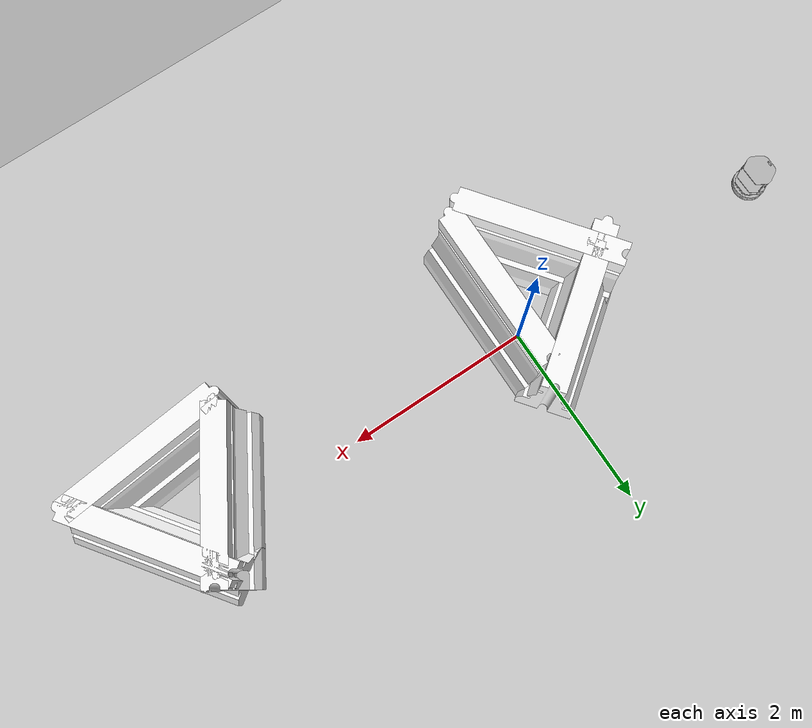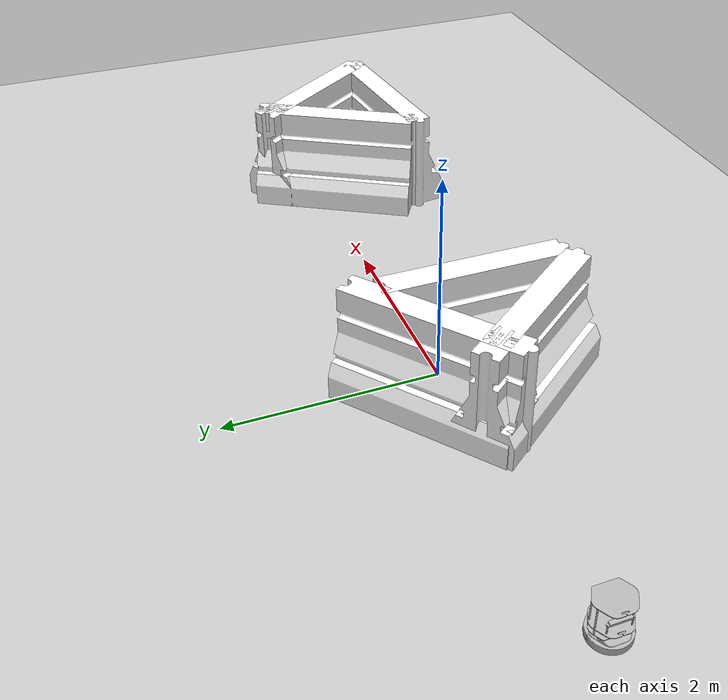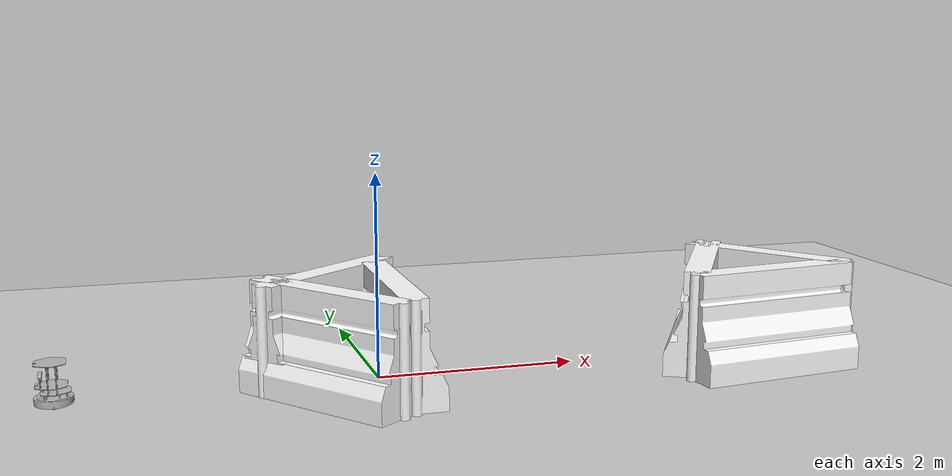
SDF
<sdf version="1.4">
 <world name="default">
  <light name="sun" type="directional">
   <cast_shadows>0</cast_shadows>
   <pose>0 0 10 0 -0 0</pose>
   <diffuse>0.8 0.8 0.8 1</diffuse>
   <specular>0.2 0.2 0.2 1</specular>
   <attenuation>
    <range>1000</range>
    <constant>0.9</constant>
    <linear>0.01</linear>
    <quadratic>0.001</quadratic>
   </attenuation>
   <direction>-0.5 0.1 -0.9</direction>
  </light>
  <model name="ground_plane">
   <static>1</static>
   <link name="link">
    <collision name="collision">
     <geometry><plane><normal>0 0 1</normal><size>100 100</size></plane></geometry>
     <surface><friction><ode><mu>100</mu><mu2>50</mu2></ode></friction></surface>
    </collision>
    <visual name="visual">
     <cast_shadows>0</cast_shadows>
     <geometry><plane><normal>0 0 1</normal><size>100 100</size></plane></geometry>
     <material>
      <script><uri>file://media/materials/scripts/gazebo.material</uri><name>Gazebo/Grey</name></script>
     </material>
    </visual>
    <velocity_decay><linear>0</linear><angular>0</angular></velocity_decay>
   </link>
  </model>
  <physics type="ode">
   <max_step_size>0.001</max_step_size>
   <real_time_factor>1</real_time_factor>
   <real_time_update_rate>1000</real_time_update_rate>
   <gravity>0 0 -9.8</gravity>
  </physics>
  <scene><ambient>0.4 0.4 0.4 1</ambient><background>0.7 0.7 0.7 1</background><shadows>0</shadows></scene>
  <spherical_coordinates>
   <surface_model>EARTH_WGS84</surface_model>
   <latitude_deg>0</latitude_deg>
   <longitude_deg>0</longitude_deg>
   <elevation>0</elevation>
   <heading_deg>0</heading_deg>
  </spherical_coordinates>
  <model name="mobile_base">
   <link name="base_footprint">
    <inertial>
     <pose>-0.00263512 -4.10874e-05 0.129243 0 -0 0</pose>
     <mass>4.6973</mass>
     <inertia>
      <ixx>0.1365</ixx>
      <ixy>-2.51802e-05</ixy>
      <ixz>0.0108194</ixz>
      <iyy>0.132157</iyy>
      <iyz>4.89572e-05</iyz>
      <izz>0.0741648</izz>
     </inertia>
    </inertial>
    <collision name="base_footprint_collision_base_link">
     <pose>0 0 0.06969 0 -0 0</pose>
     <geometry><cylinder><length>0.10938</length><radius>0.178</radius></cylinder></geometry>
     <surface><friction><ode><mu>0.3</mu><mu2>0.3</mu2></ode></friction></surface>
    </collision>
    <collision name="base_footprint_collision_camera_link">
     <pose>-0.087 -0.0015 0.2972 0 -0 0</pose>
     <geometry><box><size>0.073 0.276 0.072</size></box></geometry>
    </collision>
    <collision name="base_footprint_collision_caster_back_link">
     <pose>-0.135 0 0.0192 -1.5708 0 0</pose>
     <geometry><cylinder><length>0.0176</length><radius>0.017</radius></cylinder></geometry>
     <surface>
      <contact><ode><kp>1e+06</kp><kd>100</kd><max_vel>1</max_vel><min_depth>0.001</min_depth></ode></contact>
      <friction><ode><mu>0</mu><mu2>0</mu2></ode></friction>
     </surface>
    </collision>
    <collision name="base_footprint_collision_caster_front_link">
     <pose>0.115 0 0.0172 -1.5708 0 0</pose>
     <geometry><cylinder><length>0.0176</length><radius>0.017</radius></cylinder></geometry>
     <surface>
      <contact><ode><kp>1e+06</kp><kd>100</kd><max_vel>1</max_vel><min_depth>0.001</min_depth></ode></contact>
      <friction><ode><mu>0</mu><mu2>0</mu2></ode></friction>
     </surface>
    </collision>
    <collision name="base_footprint_collision_mount_asus_xtion_pro_link">
     <pose>-0.1024 0 0.2822 0 -0 0</pose>
     <geometry><box><size>0.033 0.276 0.012</size></box></geometry>
    </collision>
    <collision name="base_footprint_collision_plate_bottom_link">
     <pose>0 0 0.1408 0 -0 0</pose>
     <geometry><cylinder><length>0.006</length><radius>0.17</radius></cylinder></geometry>
    </collision>
    <collision name="base_footprint_collision_plate_middle_link">
     <pose>0 0 0.1976 0 -0 0</pose>
     <geometry><cylinder><length>0.006</length><radius>0.17</radius></cylinder></geometry>
    </collision>
    <collision name="base_footprint_collision_plate_top_link">
     <pose>0 0 0.4068 0 -0 0</pose>
     <geometry><cylinder><length>0.006</length><radius>0.17</radius></cylinder></geometry>
    </collision>
    <collision name="base_footprint_collision_pole_bottom_0_link">
     <pose>0.12 0.082 0.113 0 -0 0</pose>
     <geometry><cylinder><length>0.0492</length><radius>0.006</radius></cylinder></geometry>
    </collision>
    <collision name="base_footprint_collision_pole_bottom_1_link">
     <pose>0.055 0.12 0.113 0 -0 0</pose>
     <geometry><cylinder><length>0.0492</length><radius>0.006</radius></cylinder></geometry>
    </collision>
    <collision name="base_footprint_collision_pole_bottom_2_link">
     <pose>-0.055 0.12 0.113 0 -0 0</pose>
     <geometry><cylinder><length>0.0492</length><radius>0.006</radius></cylinder></geometry>
    </collision>
    <collision name="base_footprint_collision_pole_bottom_3_link">
     <pose>0.12 -0.082 0.113 0 -0 0</pose>
     <geometry><cylinder><length>0.0492</length><radius>0.006</radius></cylinder></geometry>
    </collision>
    <collision name="base_footprint_collision_pole_bottom_4_link">
     <pose>0.055 -0.12 0.113 0 -0 0</pose>
     <geometry><cylinder><length>0.0492</length><radius>0.006</radius></cylinder></geometry>
    </collision>
    <collision name="base_footprint_collision_pole_bottom_5_link">
     <pose>-0.055 -0.12 0.113 0 -0 0</pose>
     <geometry><cylinder><length>0.0492</length><radius>0.006</radius></cylinder></geometry>
    </collision>
    <collision name="base_footprint_collision_pole_kinect_0_link">
     <pose>-0.1024 0.098 0.2474 0 -0 0</pose>
     <geometry><cylinder><length>0.0936</length><radius>0.006</radius></cylinder></geometry>
    </collision>
    <collision name="base_footprint_collision_pole_kinect_1_link">
     <pose>-0.1024 -0.098 0.2474 0 -0 0</pose>
     <geometry><cylinder><length>0.0936</length><radius>0.006</radius></cylinder></geometry>
    </collision>
    <collision name="base_footprint_collision_pole_middle_0_link">
     <pose>0.0381 0.1505 0.1742 0 -0 0</pose>
     <geometry><cylinder><length>0.0608</length><radius>0.006</radius></cylinder></geometry>
    </collision>
    <collision name="base_footprint_collision_pole_middle_1_link">
     <pose>0.0381 -0.1505 0.1742 0 -0 0</pose>
     <geometry><cylinder><length>0.0608</length><radius>0.006</radius></cylinder></geometry>
    </collision>
    <collision name="base_footprint_collision_pole_middle_2_link">
     <pose>-0.0381 0.1505 0.1742 0 -0 0</pose>
     <geometry><cylinder><length>0.0608</length><radius>0.006</radius></cylinder></geometry>
    </collision>
    <collision name="base_footprint_collision_pole_middle_3_link">
     <pose>-0.0381 -0.1505 0.1742 0 -0 0</pose>
     <geometry><cylinder><length>0.0608</length><radius>0.006</radius></cylinder></geometry>
    </collision>
    <collision name="base_footprint_collision_pole_top_0_link">
     <pose>0.0381 0.1505 0.3022 0 -0 0</pose>
     <geometry><cylinder><length>0.2032</length><radius>0.006</radius></cylinder></geometry>
    </collision>
    <collision name="base_footprint_collision_pole_top_1_link">
     <pose>0.0381 -0.1505 0.3022 0 -0 0</pose>
     <geometry><cylinder><length>0.2032</length><radius>0.006</radius></cylinder></geometry>
    </collision>
    <collision name="base_footprint_collision_pole_top_2_link">
     <pose>-0.0381 0.1505 0.3022 0 -0 0</pose>
     <geometry><cylinder><length>0.2032</length><radius>0.006</radius></cylinder></geometry>
    </collision>
    <collision name="base_footprint_collision_pole_top_3_link">
     <pose>-0.0381 -0.1505 0.3022 0 -0 0</pose>
     <geometry><cylinder><length>0.2032</length><radius>0.006</radius></cylinder></geometry>
    </collision>
    <visual name="base_footprint_visual_base_link">
     <pose>0.001 0 0.06219 0 -0 0</pose>
     <geometry>
      <mesh><scale>1 1 1</scale><uri>/opt/ros/indigo/share/kobuki_description/meshes/main_body.dae</uri></mesh>
     </geometry>
    </visual>
    <visual name="base_footprint_visual_camera_link">
     <pose>-0.102 0.002 0.3012 0 -0 0</pose>
     <geometry>
      <mesh>
       <scale>1 1 1</scale>
       <uri>/opt/ros/indigo/share/turtlebot_description/meshes/sensors/xtion_pro_camera.dae</uri>
      </mesh>
     </geometry>
    </visual>
    <visual name="base_footprint_visual_mount_asus_xtion_pro_link">
     <pose>-0.1024 0 0.2822 -1.5708 0 0</pose>
     <geometry>
      <mesh>
       <scale>1 1 1</scale>
       <uri>/opt/ros/indigo/share/turtlebot_description/meshes/sensors/xtion_pro_stack.dae</uri>
      </mesh>
     </geometry>
    </visual>
    <visual name="base_footprint_visual_plate_bottom_link">
     <pose>0.02364 0 0.1408 0 -0 0</pose>
     <geometry>
      <mesh>
       <scale>1 1 1</scale>
       <uri>/opt/ros/indigo/share/turtlebot_description/meshes/stacks/hexagons/plate_bottom.dae</uri>
      </mesh>
     </geometry>
    </visual>
    <visual name="base_footprint_visual_plate_middle_link">
     <pose>-0.01364 0 0.1976 0 -0 0</pose>
     <geometry>
      <mesh>
       <scale>1 1 1</scale>
       <uri>/opt/ros/indigo/share/turtlebot_description/meshes/stacks/hexagons/plate_middle.dae</uri>
      </mesh>
     </geometry>
    </visual>
    <visual name="base_footprint_visual_plate_top_link">
     <pose>-0.01364 0 0.4068 0 -0 0</pose>
     <geometry>
      <mesh>
       <scale>1 1 1</scale>
       <uri>/opt/ros/indigo/share/turtlebot_description/meshes/stacks/hexagons/plate_top.dae</uri>
      </mesh>
     </geometry>
    </visual>
    <visual name="base_footprint_visual_pole_bottom_0_link">
     <pose>0.12 0.082 0.113 0 -0 0</pose>
     <geometry>
      <mesh>
       <scale>1 1 1</scale>
       <uri>/opt/ros/indigo/share/turtlebot_description/meshes/stacks/hexagons/pole_bottom.dae</uri>
      </mesh>
     </geometry>
    </visual>
    <visual name="base_footprint_visual_pole_bottom_1_link">
     <pose>0.055 0.12 0.113 0 -0 0</pose>
     <geometry>
      <mesh>
       <scale>1 1 1</scale>
       <uri>/opt/ros/indigo/share/turtlebot_description/meshes/stacks/hexagons/pole_bottom.dae</uri>
      </mesh>
     </geometry>
    </visual>
    <visual name="base_footprint_visual_pole_bottom_2_link">
     <pose>-0.055 0.12 0.113 0 -0 0</pose>
     <geometry>
      <mesh>
       <scale>1 1 1</scale>
       <uri>/opt/ros/indigo/share/turtlebot_description/meshes/stacks/hexagons/pole_bottom.dae</uri>
      </mesh>
     </geometry>
    </visual>
    <visual name="base_footprint_visual_pole_bottom_3_link">
     <pose>0.12 -0.082 0.113 0 -0 0</pose>
     <geometry>
      <mesh>
       <scale>1 1 1</scale>
       <uri>/opt/ros/indigo/share/turtlebot_description/meshes/stacks/hexagons/pole_bottom.dae</uri>
      </mesh>
     </geometry>
    </visual>
    <visual name="base_footprint_visual_pole_bottom_4_link">
     <pose>0.055 -0.12 0.113 0 -0 0</pose>
     <geometry>
      <mesh>
       <scale>1 1 1</scale>
       <uri>/opt/ros/indigo/share/turtlebot_description/meshes/stacks/hexagons/pole_bottom.dae</uri>
      </mesh>
     </geometry>
    </visual>
    <visual name="base_footprint_visual_pole_bottom_5_link">
     <pose>-0.055 -0.12 0.113 0 -0 0</pose>
     <geometry>
      <mesh>
       <scale>1 1 1</scale>
       <uri>/opt/ros/indigo/share/turtlebot_description/meshes/stacks/hexagons/pole_bottom.dae</uri>
      </mesh>
     </geometry>
    </visual>
    <visual name="base_footprint_visual_pole_kinect_0_link">
     <pose>-0.1024 0.098 0.2374 0 -0 0</pose>
     <geometry>
      <mesh>
       <scale>1 1 1</scale>
       <uri>/opt/ros/indigo/share/turtlebot_description/meshes/sensors/sensor_pole.dae</uri>
      </mesh>
     </geometry>
    </visual>
    <visual name="base_footprint_visual_pole_kinect_1_link">
     <pose>-0.1024 -0.098 0.2374 0 -0 0</pose>
     <geometry>
      <mesh>
       <scale>1 1 1</scale>
       <uri>/opt/ros/indigo/share/turtlebot_description/meshes/sensors/sensor_pole.dae</uri>
      </mesh>
     </geometry>
    </visual>
    <visual name="base_footprint_visual_pole_middle_0_link">
     <pose>0.0381 0.1505 0.1742 3.14159 -2.06823e-13 3.14159</pose>
     <geometry>
      <mesh>
       <scale>1 1 1</scale>
       <uri>/opt/ros/indigo/share/turtlebot_description/meshes/stacks/hexagons/pole_middle.dae</uri>
      </mesh>
     </geometry>
    </visual>
    <visual name="base_footprint_visual_pole_middle_1_link">
     <pose>0.0381 -0.1505 0.1742 3.14159 -2.06823e-13 3.14159</pose>
     <geometry>
      <mesh>
       <scale>1 1 1</scale>
       <uri>/opt/ros/indigo/share/turtlebot_description/meshes/stacks/hexagons/pole_middle.dae</uri>
      </mesh>
     </geometry>
    </visual>
    <visual name="base_footprint_visual_pole_middle_2_link">
     <pose>-0.0381 0.1505 0.1742 3.14159 -2.06823e-13 3.14159</pose>
     <geometry>
      <mesh>
       <scale>1 1 1</scale>
       <uri>/opt/ros/indigo/share/turtlebot_description/meshes/stacks/hexagons/pole_middle.dae</uri>
      </mesh>
     </geometry>
    </visual>
    <visual name="base_footprint_visual_pole_middle_3_link">
     <pose>-0.0381 -0.1505 0.1742 3.14159 -2.06823e-13 3.14159</pose>
     <geometry>
      <mesh>
       <scale>1 1 1</scale>
       <uri>/opt/ros/indigo/share/turtlebot_description/meshes/stacks/hexagons/pole_middle.dae</uri>
      </mesh>
     </geometry>
    </visual>
    <visual name="base_footprint_visual_pole_top_0_link">
     <pose>0.0381 0.1505 0.3022 0 -0 0</pose>
     <geometry>
      <mesh>
       <scale>1 1 1</scale>
       <uri>/opt/ros/indigo/share/turtlebot_description/meshes/stacks/hexagons/pole_top.dae</uri>
      </mesh>
     </geometry>
    </visual>
    <visual name="base_footprint_visual_pole_top_1_link">
     <pose>0.0381 -0.1505 0.3022 0 -0 0</pose>
     <geometry>
      <mesh>
       <scale>1 1 1</scale>
       <uri>/opt/ros/indigo/share/turtlebot_description/meshes/stacks/hexagons/pole_top.dae</uri>
      </mesh>
     </geometry>
    </visual>
    <visual name="base_footprint_visual_pole_top_2_link">
     <pose>-0.0381 0.1505 0.3022 0 -0 0</pose>
     <geometry>
      <mesh>
       <scale>1 1 1</scale>
       <uri>/opt/ros/indigo/share/turtlebot_description/meshes/stacks/hexagons/pole_top.dae</uri>
      </mesh>
     </geometry>
    </visual>
    <visual name="base_footprint_visual_pole_top_3_link">
     <pose>-0.0381 -0.1505 0.3022 0 -0 0</pose>
     <geometry>
      <mesh>
       <scale>1 1 1</scale>
       <uri>/opt/ros/indigo/share/turtlebot_description/meshes/stacks/hexagons/pole_top.dae</uri>
      </mesh>
     </geometry>
    </visual>
    <velocity_decay><linear>0</linear><angular>0</angular></velocity_decay>
    <sensor name="bumpers" type="contact">
     <always_on>1</always_on>
     <update_rate>50</update_rate>
     <visualize>1</visualize>
     <contact><collision>base_footprint_collision_base_link</collision><topic>__default_topic__</topic></contact>
     <pose>0 0 0.0102 0 -0 0</pose>
    </sensor>
    <velocity_decay><linear>0</linear><angular>0</angular></velocity_decay>
    <sensor name="camera" type="depth">
     <always_on>1</always_on>
     <update_rate>20</update_rate>
     <camera name="__default__">
      <horizontal_fov>1.0472</horizontal_fov>
      <image><format>B8G8R8</format><width>640</width><height>480</height></image>
      <clip><near>0.05</near><far>8</far></clip>
     </camera>
     <plugin name="kinect_camera_controller" filename="libgazebo_ros_openni_kinect.so">
      <cameraName>camera</cameraName>
      <alwaysOn>true</alwaysOn>
      <updateRate>10</updateRate>
      <imageTopicName>rgb/image_raw</imageTopicName>
      <depthImageTopicName>depth/image_raw</depthImageTopicName>
      <pointCloudTopicName>depth/points</pointCloudTopicName>
      <cameraInfoTopicName>rgb/camera_info</cameraInfoTopicName>
      <depthImageCameraInfoTopicName>depth/camera_info</depthImageCameraInfoTopicName>
      <frameName>camera_depth_optical_frame</frameName>
      <baseline>0.1</baseline>
      <distortion_k1>0.0</distortion_k1>
      <distortion_k2>0.0</distortion_k2>
      <distortion_k3>0.0</distortion_k3>
      <distortion_t1>0.0</distortion_t1>
      <distortion_t2>0.0</distortion_t2>
      <pointCloudCutoff>0.4</pointCloudCutoff>
      <robotNamespace>/</robotNamespace>
     </plugin>
     <pose>-0.087 -0.0015 0.2972 0 -0 0</pose>
    </sensor>
    <velocity_decay><linear>0</linear><angular>0</angular></velocity_decay>
    <velocity_decay><linear>0</linear><angular>0</angular></velocity_decay>
    <velocity_decay><linear>0</linear><angular>0</angular></velocity_decay>
    <sensor name="cliff_sensor_front" type="ray">
     <always_on>1</always_on>
     <update_rate>50</update_rate>
     <visualize>1</visualize>
     <ray>
      <scan>
       <horizontal>
        <samples>50</samples>
        <resolution>1</resolution>
        <min_angle>-0.0436</min_angle>
        <max_angle>0.0436</max_angle>
       </horizontal>
      </scan>
      <range><min>0.01</min><max>0.15</max><resolution>1</resolution></range>
     </ray>
     <pose>0.156 0 0.0316 3.14159 1.57079 3.14159</pose>
    </sensor>
    <velocity_decay><linear>0</linear><angular>0</angular></velocity_decay>
    <sensor name="cliff_sensor_left" type="ray">
     <always_on>1</always_on>
     <update_rate>50</update_rate>
     <visualize>1</visualize>
     <ray>
      <scan>
       <horizontal>
        <samples>50</samples>
        <resolution>1</resolution>
        <min_angle>-0.0436</min_angle>
        <max_angle>0.0436</max_angle>
       </horizontal>
      </scan>
      <range><min>0.01</min><max>0.15</max><resolution>1</resolution></range>
     </ray>
     <pose>0.08734 0.13601 0.0316 3.14159 1.57079 3.14159</pose>
    </sensor>
    <velocity_decay><linear>0</linear><angular>0</angular></velocity_decay>
    <sensor name="cliff_sensor_right" type="ray">
     <always_on>1</always_on>
     <update_rate>50</update_rate>
     <visualize>1</visualize>
     <ray>
      <scan>
       <horizontal>
        <samples>50</samples>
        <resolution>1</resolution>
        <min_angle>-0.0436</min_angle>
        <max_angle>0.0436</max_angle>
       </horizontal>
      </scan>
      <range><min>0.01</min><max>0.15</max><resolution>1</resolution></range>
     </ray>
     <pose>0.085 -0.13601 0.0316 3.14159 1.57079 3.14159</pose>
    </sensor>
    <velocity_decay><linear>0</linear><angular>0</angular></velocity_decay>
    <sensor name="imu" type="imu">
     <always_on>1</always_on>
     <update_rate>50</update_rate>
     <visualize>0</visualize>
     <imu>
      <noise>
       <type>gaussian</type>
       <rate><mean>0</mean><stddev>1.96e-06</stddev><bias_mean>0</bias_mean><bias_stddev>0</bias_stddev></rate>
       <accel><mean>0</mean><stddev>0.017</stddev><bias_mean>0.1</bias_mean><bias_stddev>0.001</bias_stddev></accel>
      </noise>
     </imu>
     <pose>0.056 0.062 0.0304 0 -0 0</pose>
    </sensor>
   </link>
   <link name="wheel_left_link">
    <pose>0 0.115 0.0352 -1.5708 0 0</pose>
    <inertial>
     <mass>0.01</mass>
     <inertia><ixx>0.001</ixx><ixy>0</ixy><ixz>0</ixz><iyy>0.001</iyy><iyz>0</iyz><izz>0.001</izz></inertia>
    </inertial>
    <collision name="wheel_left_link_collision">
     <geometry><cylinder><length>0.0206</length><radius>0.0352</radius></cylinder></geometry>
     <surface>
      <contact><ode><kp>1e+06</kp><kd>100</kd><max_vel>1</max_vel><min_depth>0.001</min_depth></ode></contact>
      <friction><ode><mu>1</mu><mu2>1</mu2></ode></friction>
     </surface>
    </collision>
    <visual name="wheel_left_link_visual">
     <geometry>
      <mesh><scale>1 1 1</scale><uri>/opt/ros/indigo/share/kobuki_description/meshes/wheel.dae</uri></mesh>
     </geometry>
    </visual>
    <velocity_decay><linear>0</linear><angular>0</angular></velocity_decay>
   </link>
   <joint name="wheel_left_joint" type="revolute">
    <child>wheel_left_link</child>
    <parent>base_footprint</parent>
    <axis><xyz>0 1 0</xyz><limit><lower>-1e+16</lower><upper>1e+16</upper></limit></axis>
   </joint>
   <link name="wheel_right_link">
    <pose>0 -0.115 0.0352 -1.5708 0 0</pose>
    <inertial>
     <mass>0.01</mass>
     <inertia><ixx>0.001</ixx><ixy>0</ixy><ixz>0</ixz><iyy>0.001</iyy><iyz>0</iyz><izz>0.001</izz></inertia>
    </inertial>
    <collision name="wheel_right_link_collision">
     <geometry><cylinder><length>0.0206</length><radius>0.035</radius></cylinder></geometry>
     <surface>
      <contact><ode><kp>1e+06</kp><kd>100</kd><max_vel>1</max_vel><min_depth>0.001</min_depth></ode></contact>
      <friction><ode><mu>1</mu><mu2>1</mu2></ode></friction>
     </surface>
    </collision>
    <visual name="wheel_right_link_visual">
     <geometry>
      <mesh><scale>1 1 1</scale><uri>/opt/ros/indigo/share/kobuki_description/meshes/wheel.dae</uri></mesh>
     </geometry>
    </visual>
    <velocity_decay><linear>0</linear><angular>0</angular></velocity_decay>
   </link>
   <joint name="wheel_right_joint" type="revolute">
    <child>wheel_right_link</child>
    <parent>base_footprint</parent>
    <axis><xyz>0 1 0</xyz><limit><lower>-1e+16</lower><upper>1e+16</upper></limit></axis>
   </joint>
   <static>0</static>
   <plugin name="kobuki_controller" filename="libgazebo_ros_kobuki.so">
    <publish_tf>1</publish_tf>
    <left_wheel_joint_name>wheel_left_joint</left_wheel_joint_name>
    <right_wheel_joint_name>wheel_right_joint</right_wheel_joint_name>
    <wheel_separation>.230</wheel_separation>
    <wheel_diameter>0.070</wheel_diameter>
    <torque>1.0</torque>
    <velocity_command_timeout>0.6</velocity_command_timeout>
    <cliff_sensor_left_name>cliff_sensor_left</cliff_sensor_left_name>
    <cliff_sensor_center_name>cliff_sensor_front</cliff_sensor_center_name>
    <cliff_sensor_right_name>cliff_sensor_right</cliff_sensor_right_name>
    <cliff_detection_threshold>0.04</cliff_detection_threshold>
    <bumper_name>bumpers</bumper_name>
    <imu_name>imu</imu_name>
    <robotNamespace>/</robotNamespace>
   </plugin>
   <pose>-2.9995 6e-06 -0.000248 0.000769 -0.014418 0.000642</pose>
  </model>
  <model name="drc_practice_white_jersey_barrier">
   <static>1</static>
   <link name="link">
    <visual name="visual">
     <geometry>
      <mesh><uri>model://drc_practice_white_jersey_barrier/meshes/jersey_barrier.dae</uri></mesh>
     </geometry>
    </visual>
    <collision name="collision">
     <geometry>
      <mesh><uri>model://drc_practice_white_jersey_barrier/meshes/jersey_barrier.dae</uri></mesh>
     </geometry>
    </collision>
    <velocity_decay><linear>0</linear><angular>0</angular></velocity_decay>
   </link>
   <pose>-0.58615 -0.597203 0 0 -0 0.6518</pose>
  </model>
  <model name="drc_practice_white_jersey_barrier_0">
   <static>1</static>
   <link name="link">
    <visual name="visual">
     <geometry>
      <mesh><uri>model://drc_practice_white_jersey_barrier/meshes/jersey_barrier.dae</uri></mesh>
     </geometry>
    </visual>
    <collision name="collision">
     <geometry>
      <mesh><uri>model://drc_practice_white_jersey_barrier/meshes/jersey_barrier.dae</uri></mesh>
     </geometry>
    </collision>
    <velocity_decay><linear>0</linear><angular>0</angular></velocity_decay>
   </link>
   <pose>0.077778 -0.334357 0 0 -0 0</pose>
  </model>
  <model name="drc_practice_white_jersey_barrier_1">
   <static>1</static>
   <link name="link">
    <visual name="visual">
     <geometry>
      <mesh><uri>model://drc_practice_white_jersey_barrier/meshes/jersey_barrier.dae</uri></mesh>
     </geometry>
    </visual>
    <collision name="collision">
     <geometry>
      <mesh><uri>model://drc_practice_white_jersey_barrier/meshes/jersey_barrier.dae</uri></mesh>
     </geometry>
    </collision>
    <velocity_decay><linear>0</linear><angular>0</angular></velocity_decay>
   </link>
   <pose>-0.448057 0.247677 0 0 0 -0.909828</pose>
  </model>
  <model name="drc_practice_white_jersey_barrier_2">
   <static>1</static>
   <link name="link">
    <visual name="visual">
     <geometry>
      <mesh><uri>model://drc_practice_white_jersey_barrier/meshes/jersey_barrier.dae</uri></mesh>
     </geometry>
    </visual>
    <collision name="collision">
     <geometry>
      <mesh><uri>model://drc_practice_white_jersey_barrier/meshes/jersey_barrier.dae</uri></mesh>
     </geometry>
    </collision>
    <velocity_decay><linear>0</linear><angular>0</angular></velocity_decay>
   </link>
   <pose>3.75091 -0.876665 0 0 0 -1.4595</pose>
  </model>
  <model name="drc_practice_white_jersey_barrier_3">
   <static>1</static>
   <link name="link">
    <visual name="visual">
     <geometry>
      <mesh><uri>model://drc_practice_white_jersey_barrier/meshes/jersey_barrier.dae</uri></mesh>
     </geometry>
    </visual>
    <collision name="collision">
     <geometry>
      <mesh><uri>model://drc_practice_white_jersey_barrier/meshes/jersey_barrier.dae</uri></mesh>
     </geometry>
    </collision>
    <velocity_decay><linear>0</linear><angular>0</angular></velocity_decay>
   </link>
   <pose>3.37269 -0.160722 0 0 0 -0.534859</pose>
  </model>
  <model name="drc_practice_white_jersey_barrier_4">
   <static>1</static>
   <link name="link">
    <visual name="visual">
     <geometry>
      <mesh><uri>model://drc_practice_white_jersey_barrier/meshes/jersey_barrier.dae</uri></mesh>
     </geometry>
    </visual>
    <collision name="collision">
     <geometry>
      <mesh><uri>model://drc_practice_white_jersey_barrier/meshes/jersey_barrier.dae</uri></mesh>
     </geometry>
    </collision>
    <velocity_decay><linear>0</linear><angular>0</angular></velocity_decay>
   </link>
   <pose>4.1045 -0.13706 0 0 -0 0.63091</pose>
  </model>
 </world>
</sdf>
